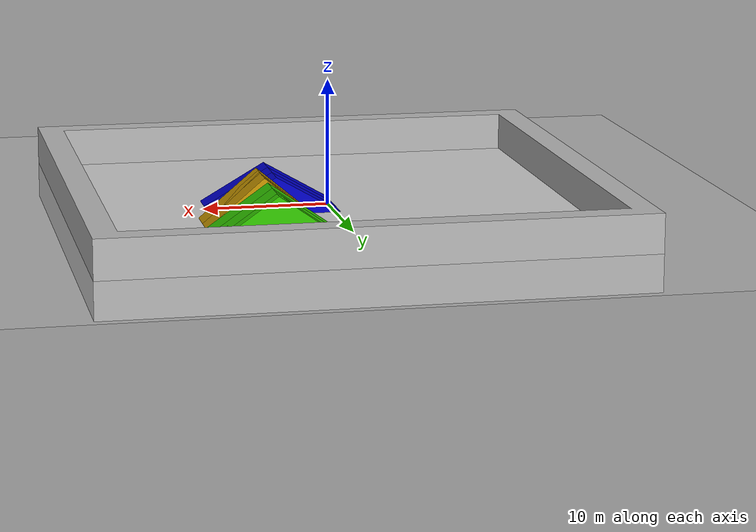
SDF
<sdf version="1.6">
 <world name="default">
  <light name="sun" type="directional">
   <pose>0 0 10 0 -0 0</pose>
   <diffuse>0.8 0.8 0.8 1</diffuse>
   <specular>0.1 0.1 0.1 1</specular>
   <attenuation>
    <range>1000</range>
    <constant>0.9</constant>
    <linear>0.01</linear>
    <quadratic>0.001</quadratic>
   </attenuation>
   <direction>-0.5 0.5 -1</direction>
  </light>
  <model name="ground_plane">
   <static>1</static>
   <link name="link">
    <collision name="collision">
     <geometry><plane><normal>0 0 1</normal><size>100 100</size></plane></geometry>
     <surface><friction><ode><mu>100</mu><mu2>50</mu2></ode></friction></surface>
    </collision>
    <visual name="visual">
     <cast_shadows>0</cast_shadows>
     <geometry><plane><normal>0 0 1</normal><size>100 100</size></plane></geometry>
     <material>
      <script><uri>file://media/materials/scripts/gazebo.material</uri><name>Gazebo/Grey</name></script>
     </material>
    </visual>
   </link>
  </model>
  <gravity>0 0 -9.8</gravity>
  <magnetic_field>6e-06 2.3e-05 -4.2e-05</magnetic_field>
  <atmosphere type="adiabatic"/>
  <physics name="default_physics" default="0" type="ode">
   <max_step_size>0.001</max_step_size>
   <real_time_factor>1</real_time_factor>
   <real_time_update_rate>1000</real_time_update_rate>
  </physics>
  <scene><ambient>0.4 0.4 0.4 1</ambient><background>0.7 0.7 0.7 1</background><shadows>1</shadows></scene>
  <spherical_coordinates>
   <surface_model>EARTH_WGS84</surface_model>
   <latitude_deg>0</latitude_deg>
   <longitude_deg>0</longitude_deg>
   <elevation>0</elevation>
   <heading_deg>0</heading_deg>
  </spherical_coordinates>
  <model name="roboskel_playground">
   <static>1</static>
   <link name="slope40">
    <collision name="collision">
     <pose>6.5 -1 -0.1 0 -0 0</pose>
     <geometry>
      <mesh><uri>model://roboskel_playground/meshes/slope40.dae</uri><scale>1 1 1</scale></mesh>
     </geometry>
     <surface>
      <friction><ode><mu>1</mu><mu2>1</mu2></ode></friction>
      <contact><ode><kp>1e+07</kp><kd>1</kd><min_depth>0.001</min_depth><max_vel>0.1</max_vel></ode></contact>
     </surface>
    </collision>
    <visual name="visual">
     <cast_shadows>0</cast_shadows>
     <pose>6.5 -1 -0.1 0 -0 0</pose>
     <geometry>
      <mesh><uri>model://roboskel_playground/meshes/slope40.dae</uri><scale>1 1 1</scale></mesh>
     </geometry>
     <material>
      <ambient>0.8 0.6 0 1</ambient>
      <diffuse>0.8 0.6 0 1</diffuse>
      <specular>0.1 0.1 0.1 1</specular>
      <emissive>0 0 0 0</emissive>
     </material>
    </visual>
   </link>
   <link name="slope40_1">
    <collision name="collision">
     <pose>6.5 0 -0.1 0 -0 0</pose>
     <geometry>
      <mesh><uri>model://roboskel_playground/meshes/slope40.dae</uri><scale>1 1 1</scale></mesh>
     </geometry>
     <surface>
      <friction><ode><mu>1</mu><mu2>1</mu2></ode></friction>
      <contact><ode><kp>1e+07</kp><kd>1</kd><min_depth>0.001</min_depth><max_vel>0.1</max_vel></ode></contact>
     </surface>
    </collision>
    <visual name="visual">
     <cast_shadows>0</cast_shadows>
     <pose>6.5 0 -0.1 0 -0 0</pose>
     <geometry>
      <mesh><uri>model://roboskel_playground/meshes/slope40.dae</uri><scale>1 1 1</scale></mesh>
     </geometry>
     <material>
      <ambient>0.8 0.6 0 1</ambient>
      <diffuse>0.8 0.6 0 1</diffuse>
      <specular>0.1 0.1 0.1 1</specular>
      <emissive>0 0 0 0</emissive>
     </material>
    </visual>
   </link>
   <link name="slope40_2">
    <collision name="collision">
     <pose>6.5 -2 -0.1 0 -0 0</pose>
     <geometry>
      <mesh><uri>model://roboskel_playground/meshes/slope40.dae</uri><scale>1 1 1</scale></mesh>
     </geometry>
     <surface>
      <friction><ode><mu>1</mu><mu2>1</mu2></ode></friction>
      <contact><ode><kp>1e+07</kp><kd>1</kd><min_depth>0.001</min_depth><max_vel>0.1</max_vel></ode></contact>
     </surface>
    </collision>
    <visual name="visual">
     <cast_shadows>0</cast_shadows>
     <pose>6.5 -2 -0.1 0 -0 0</pose>
     <geometry>
      <mesh><uri>model://roboskel_playground/meshes/slope40.dae</uri><scale>1 1 1</scale></mesh>
     </geometry>
     <material>
      <ambient>0.8 0.6 0 1</ambient>
      <diffuse>0.8 0.6 0 1</diffuse>
      <specular>0.1 0.1 0.1 1</specular>
      <emissive>0 0 0 0</emissive>
     </material>
    </visual>
   </link>
   <link name="slope35">
    <collision name="collision">
     <pose>6.5 2 0.01 0 -0 0</pose>
     <geometry>
      <mesh><uri>model://roboskel_playground/meshes/slope35.dae</uri><scale>1 1 1</scale></mesh>
     </geometry>
     <surface>
      <friction><ode><mu>1</mu><mu2>1</mu2></ode></friction>
      <contact><ode><kp>1e+07</kp><kd>1</kd><min_depth>0.001</min_depth><max_vel>0.1</max_vel></ode></contact>
     </surface>
    </collision>
    <visual name="visual">
     <cast_shadows>0</cast_shadows>
     <pose>6.5 2 0.01 0 -0 0</pose>
     <geometry>
      <mesh><uri>model://roboskel_playground/meshes/slope35.dae</uri><scale>1 1 1</scale></mesh>
     </geometry>
     <material>
      <ambient>0.2 0.8 0 1</ambient>
      <diffuse>0.2 0.8 0 1</diffuse>
      <specular>0.1 0.1 0.1 1</specular>
      <emissive>0 0 0 0</emissive>
     </material>
    </visual>
   </link>
   <link name="slope35_1">
    <collision name="collision">
     <pose>6.5 3 0.01 0 -0 0</pose>
     <geometry>
      <mesh><uri>model://roboskel_playground/meshes/slope35.dae</uri><scale>1 1 1</scale></mesh>
     </geometry>
     <surface>
      <friction><ode><mu>1</mu><mu2>1</mu2></ode></friction>
      <contact><ode><kp>1e+07</kp><kd>1</kd><min_depth>0.001</min_depth><max_vel>0.1</max_vel></ode></contact>
     </surface>
    </collision>
    <visual name="visual">
     <cast_shadows>0</cast_shadows>
     <pose>6.5 3 0.01 0 -0 0</pose>
     <geometry>
      <mesh><uri>model://roboskel_playground/meshes/slope35.dae</uri><scale>1 1 1</scale></mesh>
     </geometry>
     <material>
      <ambient>0.2 0.8 0 1</ambient>
      <diffuse>0.2 0.8 0 1</diffuse>
      <specular>0.1 0.1 0.1 1</specular>
      <emissive>0 0 0 0</emissive>
     </material>
    </visual>
   </link>
   <link name="slope35_2">
    <collision name="collision">
     <pose>6.5 0 0.01 0 -0 0</pose>
     <geometry>
      <mesh><uri>model://roboskel_playground/meshes/slope35.dae</uri><scale>1 1 1</scale></mesh>
     </geometry>
     <surface>
      <friction><ode><mu>1</mu><mu2>1</mu2></ode></friction>
      <contact><ode><kp>1e+07</kp><kd>1</kd><min_depth>0.001</min_depth><max_vel>0.1</max_vel></ode></contact>
     </surface>
    </collision>
    <visual name="visual">
     <cast_shadows>0</cast_shadows>
     <pose>6.5 0 0.01 0 -0 0</pose>
     <geometry>
      <mesh><uri>model://roboskel_playground/meshes/slope35.dae</uri><scale>1 1 1</scale></mesh>
     </geometry>
     <material>
      <ambient>0.2 0.8 0 1</ambient>
      <diffuse>0.2 0.8 0 1</diffuse>
      <specular>0.1 0.1 0.1 1</specular>
      <emissive>0 0 0 0</emissive>
     </material>
    </visual>
   </link>
   <link name="slope30">
    <collision name="collision">
     <pose>5.3 -10 -0.1 0 -0 0</pose>
     <geometry>
      <mesh><uri>model://roboskel_playground/meshes/slope30.dae</uri><scale>1 1 1</scale></mesh>
     </geometry>
     <surface>
      <friction><ode><mu>1</mu><mu2>1</mu2></ode></friction>
      <contact><ode><kp>1e+07</kp><kd>1</kd><min_depth>0.001</min_depth><max_vel>0.1</max_vel></ode></contact>
     </surface>
    </collision>
    <visual name="visual">
     <cast_shadows>0</cast_shadows>
     <pose>5.3 -10 -0.1 0 -0 0</pose>
     <geometry>
      <mesh><uri>model://roboskel_playground/meshes/slope30.dae</uri><scale>1 1 1</scale></mesh>
     </geometry>
     <material>
      <ambient>0 0 0.8 1</ambient>
      <diffuse>0 0 0.8 1</diffuse>
      <specular>0.1 0.1 0.1 1</specular>
      <emissive>0 0 0 0</emissive>
     </material>
    </visual>
   </link>
   <link name="slope30_1">
    <collision name="collision">
     <pose>5.3 -12 -0.1 0 -0 0</pose>
     <geometry>
      <mesh><uri>model://roboskel_playground/meshes/slope30.dae</uri><scale>1 1 1</scale></mesh>
     </geometry>
     <surface>
      <friction><ode><mu>1</mu><mu2>1</mu2></ode></friction>
      <contact><ode><kp>1e+07</kp><kd>1</kd><min_depth>0.001</min_depth><max_vel>0.1</max_vel></ode></contact>
     </surface>
    </collision>
    <visual name="visual">
     <cast_shadows>0</cast_shadows>
     <pose>5.3 -12 -0.1 0 -0 0</pose>
     <geometry>
      <mesh><uri>model://roboskel_playground/meshes/slope30.dae</uri><scale>1 1 1</scale></mesh>
     </geometry>
     <material>
      <ambient>0 0 0.8 1</ambient>
      <diffuse>0 0 0.8 1</diffuse>
      <specular>0.1 0.1 0.1 1</specular>
      <emissive>0 0 0 0</emissive>
     </material>
    </visual>
   </link>
   <link name="slope30_2">
    <collision name="collision">
     <pose>5.3 -8 -0.1 0 -0 0</pose>
     <geometry>
      <mesh><uri>model://roboskel_playground/meshes/slope30.dae</uri><scale>1 1 1</scale></mesh>
     </geometry>
     <surface>
      <friction><ode><mu>1</mu><mu2>1</mu2></ode></friction>
      <contact><ode><kp>1e+07</kp><kd>1</kd><min_depth>0.001</min_depth><max_vel>0.1</max_vel></ode></contact>
     </surface>
    </collision>
    <visual name="visual">
     <cast_shadows>0</cast_shadows>
     <pose>5.3 -8 -0.1 0 -0 0</pose>
     <geometry>
      <mesh><uri>model://roboskel_playground/meshes/slope30.dae</uri><scale>1 1 1</scale></mesh>
     </geometry>
     <material>
      <ambient>0 0 0.8 1</ambient>
      <diffuse>0 0 0.8 1</diffuse>
      <specular>0.1 0.1 0.1 1</specular>
      <emissive>0 0 0 0</emissive>
     </material>
    </visual>
   </link>
   <link name="boundaries">
    <collision name="collision">
     <pose>0 0 0.01 0 -0 0</pose>
     <geometry>
      <mesh><uri>model://roboskel_playground/meshes/boundaries.dae</uri><scale>1 1 1</scale></mesh>
     </geometry>
     <surface>
      <friction><ode><mu>1</mu><mu2>1</mu2></ode></friction>
      <contact><ode><kp>1e+07</kp><kd>1</kd><min_depth>0.001</min_depth><max_vel>0.1</max_vel></ode></contact>
     </surface>
    </collision>
    <visual name="visual">
     <cast_shadows>0</cast_shadows>
     <pose>0 0 0.01 0 -0 0</pose>
     <geometry>
      <mesh><uri>model://roboskel_playground/meshes/boundaries.dae</uri><scale>1 1 1</scale></mesh>
     </geometry>
    </visual>
   </link>
   <link name="plane">
    <collision name="collision">
     <pose>0 0 0.01 0 -0 0</pose>
     <geometry><mesh><uri>model://roboskel_playground/meshes/plane.dae</uri><scale>1 1 1</scale></mesh></geometry>
     <surface>
      <friction><ode><mu>1</mu><mu2>1</mu2></ode></friction>
      <contact><ode><kp>1e+07</kp><kd>1</kd><min_depth>0.001</min_depth><max_vel>0.1</max_vel></ode></contact>
     </surface>
    </collision>
    <visual name="visual">
     <cast_shadows>0</cast_shadows>
     <pose>0 0 0.01 0 -0 0</pose>
     <geometry><mesh><uri>model://roboskel_playground/meshes/plane.dae</uri><scale>1 1 1</scale></mesh></geometry>
     <material>
      <ambient>0.8 0.8 0.8 1</ambient>
      <diffuse>0.8 0.8 0.8 1</diffuse>
      <specular>0.1 0.1 0.1 1</specular>
      <emissive>0 0 0 0</emissive>
     </material>
    </visual>
   </link>
  </model>
 </world>
</sdf>
